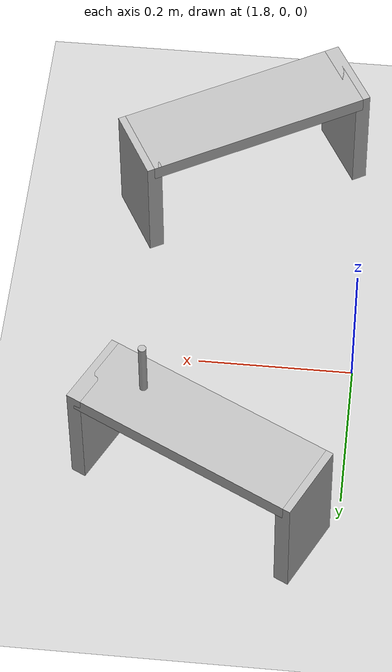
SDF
<sdf version="1.7">
 <world name="default">
  <light name="sun" type="directional">
   <pose>0 0 10 0 -0 0</pose>
   <diffuse>0.8 0.8 0.8 1</diffuse>
   <specular>0.2 0.2 0.2 1</specular>
   <attenuation>
    <range>1000</range>
    <constant>0.9</constant>
    <linear>0.01</linear>
    <quadratic>0.001</quadratic>
   </attenuation>
   <direction>-0.5 0.1 -0.9</direction>
   <spot><inner_angle>0</inner_angle><outer_angle>0</outer_angle><falloff>0</falloff></spot>
  </light>
  <model name="ground_plane">
   <static>1</static>
   <link name="link">
    <collision name="collision">
     <geometry><plane><normal>0 0 1</normal><size>100 100</size></plane></geometry>
     <surface>
      <contact><collide_bitmask>65535</collide_bitmask></contact>
      <friction><ode><mu>100</mu><mu2>50</mu2></ode></friction>
     </surface>
    </collision>
    <visual name="visual">
     <cast_shadows>0</cast_shadows>
     <geometry><plane><normal>0 0 1</normal><size>100 100</size></plane></geometry>
     <material>
      <script><uri>file://media/materials/scripts/gazebo.material</uri><name>Gazebo/Grey</name></script>
     </material>
    </visual>
   </link>
  </model>
  <gravity>0 0 -9.8</gravity>
  <magnetic_field>6e-06 2.3e-05 -4.2e-05</magnetic_field>
  <atmosphere type="adiabatic"/>
  <physics type="ode">
   <max_step_size>0.001</max_step_size>
   <real_time_factor>1</real_time_factor>
   <real_time_update_rate>1000</real_time_update_rate>
  </physics>
  <scene><ambient>0.4 0.4 0.4 1</ambient><background>0.7 0.7 0.7 1</background><shadows>1</shadows></scene>
  <audio><device>default</device></audio>
  <spherical_coordinates>
   <surface_model>EARTH_WGS84</surface_model>
   <latitude_deg>0</latitude_deg>
   <longitude_deg>0</longitude_deg>
   <elevation>0</elevation>
   <heading_deg>0</heading_deg>
  </spherical_coordinates>
  <model name="table">
   <static>1</static>
   <pose>1.954 0.166773 0 0 -0 1.10416</pose>
   <link name="link">
    <collision name="collision">
     <pose>0.05 0 0.08 0 -0 0</pose>
     <geometry><box><size>0.1 0.3 0.16</size></box></geometry>
    </collision>
    <visual name="top_visual">
     <pose>0.05 0 0.15 0 -0 0</pose>
     <geometry><box><size>0.1 0.3 0.02</size></box></geometry>
    </visual>
    <visual name="leg_left_visual">
     <pose>0.05 -0.15 0.08 0 -0 0</pose>
     <geometry><box><size>0.1 0.02 0.16</size></box></geometry>
    </visual>
    <visual name="leg_right_visual">
     <pose>0.05 0.15 0.08 0 -0 0</pose>
     <geometry><box><size>0.1 0.02 0.16</size></box></geometry>
    </visual>
   </link>
  </model>
  <model name="table_0">
   <static>1</static>
   <pose>1.99375 -0.346217 0 0 -0 2.08133</pose>
   <link name="link">
    <collision name="collision">
     <pose>0.05 0 0.08 0 -0 0</pose>
     <geometry><box><size>0.1 0.3 0.16</size></box></geometry>
    </collision>
    <visual name="top_visual">
     <pose>0.05 0 0.15 0 -0 0</pose>
     <geometry><box><size>0.1 0.3 0.02</size></box></geometry>
    </visual>
    <visual name="leg_left_visual">
     <pose>0.05 -0.15 0.08 0 -0 0</pose>
     <geometry><box><size>0.1 0.02 0.16</size></box></geometry>
    </visual>
    <visual name="leg_right_visual">
     <pose>0.05 0.15 0.08 0 -0 0</pose>
     <geometry><box><size>0.1 0.02 0.16</size></box></geometry>
    </visual>
   </link>
  </model>
  <model name="pickable_object">
   <static>0</static>
   <pose>2.04947 0.163331 0.200003 0.000152 0.000547 -0.975199</pose>
   <link name="link">
    <inertial>
     <mass>0.05</mass>
     <inertia><ixx>1e-05</ixx><iyy>1e-05</iyy><izz>1e-05</izz><ixy>0</ixy><ixz>0</ixz><iyz>0</iyz></inertia>
    </inertial>
    <collision name="collision">
     <geometry><cylinder><radius>0.005</radius><length>0.08</length></cylinder></geometry>
    </collision>
    <visual name="visual">
     <geometry><cylinder><radius>0.005</radius><length>0.08</length></cylinder></geometry>
    </visual>
   </link>
  </model>
  <plugin name="gazebo_link_attacher" filename="libgazebo_link_attacher.so"/>
 </world>
</sdf>
